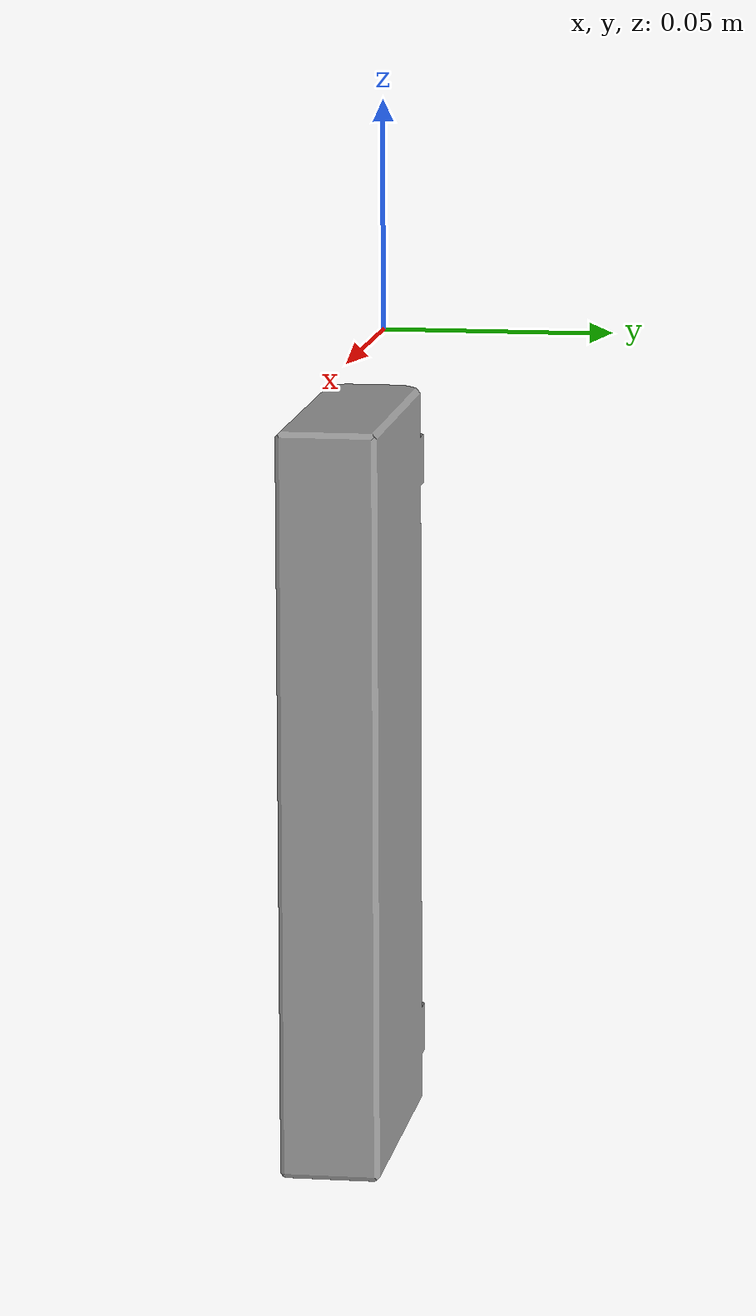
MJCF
<mujoco model="f2_block_3">
  <default>
    <default class="visual">
      <geom group="2" type="mesh" contype="0" conaffinity="0"/>
    </default>
    <default class="collision">
      <geom group="3" type="mesh"/>
    </default>
  </default>
  <asset>
    <material name="Steel_-_Satin" specular="0.5" shininess="0.5" rgba="0.627451 0.627451 0.627451 1.0"/>
    <mesh file="f2_block_3.obj"/>
    <mesh file="f2_block_3_collision_0.obj"/>
    <mesh file="f2_block_3_collision_1.obj"/>
    <mesh file="f2_block_3_collision_2.obj"/>
    <mesh file="f2_block_3_collision_3.obj"/>
    <mesh file="f2_block_3_collision_4.obj"/>
    <mesh file="f2_block_3_collision_5.obj"/>
  </asset>
  <worldbody>
    <body name="f2_block_3">
      <geom material="Steel_-_Satin" mesh="f2_block_3" class="visual"/>
      <geom mesh="f2_block_3_collision_0" rgba="0.3479196293457689 0.936881400039445 0.3570730238849361 1" class="collision"/>
      <geom mesh="f2_block_3_collision_1" rgba="0.8328970229694058 0.7708377545532884 0.0995791673758365 1" class="collision"/>
      <geom mesh="f2_block_3_collision_2" rgba="0.24767238234134437 0.5397577865419405 0.2923584799686584 1" class="collision"/>
      <geom mesh="f2_block_3_collision_3" rgba="0.038840350777118005 0.7193890744367787 0.8025918501932199 1" class="collision"/>
      <geom mesh="f2_block_3_collision_4" rgba="0.39684270494857277 0.4858339620834494 0.07307505008312642 1" class="collision"/>
      <geom mesh="f2_block_3_collision_5" rgba="0.9428168584295121 0.10658825946129424 0.9836557879487716 1" class="collision"/>
    </body>
  </worldbody>
</mujoco>
